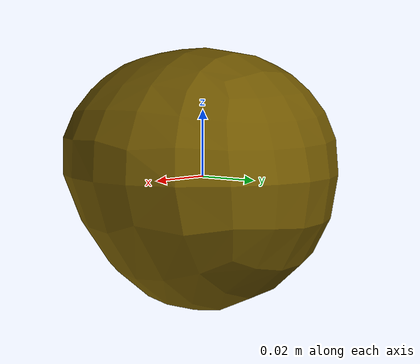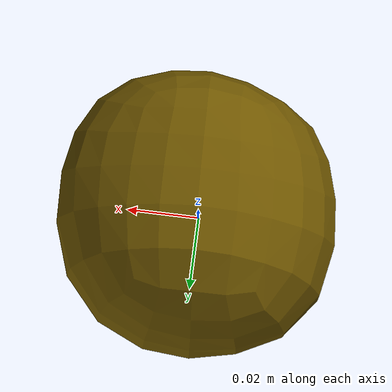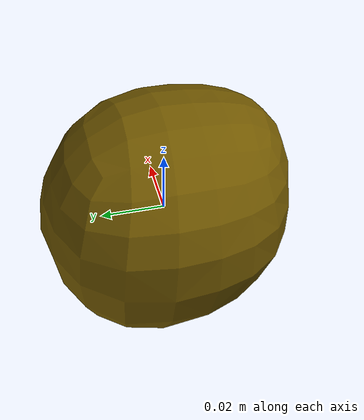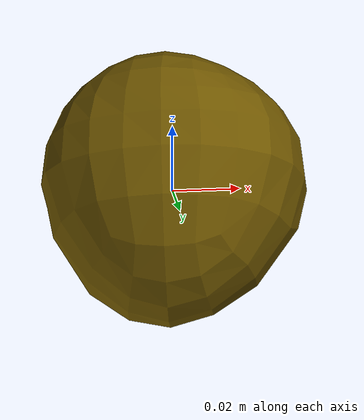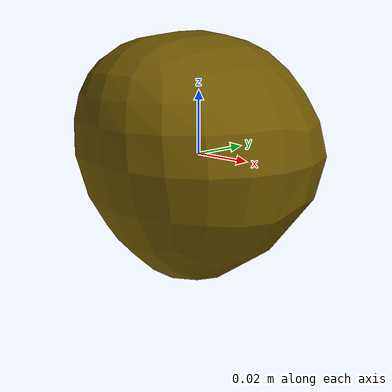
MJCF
<mujoco model="Potato_30">
  <compiler autolimits="true" boundmass="0.01" angle="radian"/>
  <default>
    <default class="/">
      <default class="__VISUAL_MJT__">
        <geom contype="0" conaffinity="0" group="0"/>
      </default>
      <default class="__STRUCTURAL_MJT__">
        <geom contype="8" conaffinity="15" group="4" friction="0.90000000000000002 0.90000000000000002 0.001" solref="0.025000000000000001 1" solimp="0.998 0.998 0.001"/>
      </default>
      <default class="__DYNAMIC_MJT__">
        <geom contype="1" conaffinity="15" group="4" friction="0.90000000000000002 0.90000000000000002 0.001" solref="0.025000000000000001 1" solimp="0.998 0.998 0.001"/>
      </default>
    </default>
  </default>
  <asset>
    <texture name="Potato3_Mat5" type="2d" file="Potato3_AlbedoTransparency.png"/>
    <material name="material_Potato3_Mat5" class="/" texture="Potato3_Mat5" specular="0.5" shininess="0.5" rgba="0.58823530000000002 0.47464499999999998 0 1"/>
    <mesh name="Potato_30_potato_c10" class="/" file="Potato_30_potato_c10/Potato_30_potato_c10.obj" scale="1 1 1"/>
  </asset>
  <worldbody>
    <body name="Potato_30">
      <joint name="Potato_30_free" class="/" type="free" pos="0 0 0" axis="0 0 1" stiffness="0" range="0 0" armature="0" damping="0.10000000000000001" frictionloss="0"/>
      <body name="Potato_30_potato_c10" pos="0.00048000000000000001 0.0012600000000000001 0.0028400000000000001" quat="1 0 0 0">
        <geom name="Potato_30_potato_c10" class="__VISUAL_MJT__" type="mesh" material="material_Potato3_Mat5" shellinertia="true" mesh="Potato_30_potato_c10"/>
        <geom name="Potato_30_PrimitiveCollider_0" class="__DYNAMIC_MJT__" type="capsule" size="0.040528200566768646 1.0000000000000001e-05" rgba="0 1 0 1" pos="0.00048111379146575928 -0.0012634033337235451 -0.0028410516679286957" quat="1.4751396609986736e-06 0.99999999999891198 0 0"/>
      </body>
    </body>
  </worldbody>
</mujoco>
